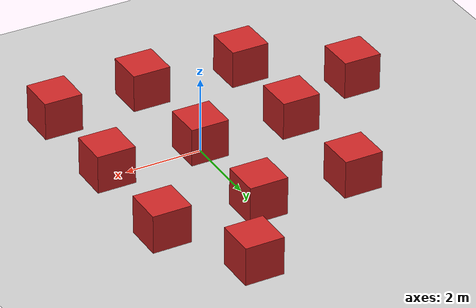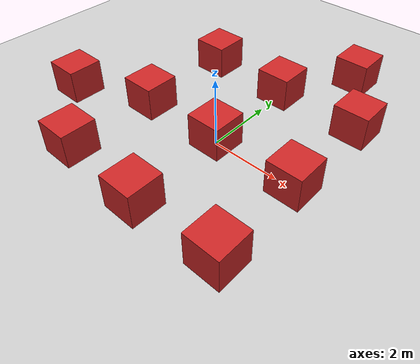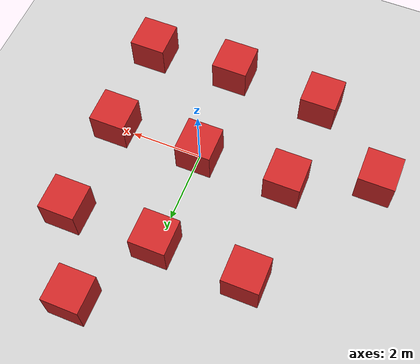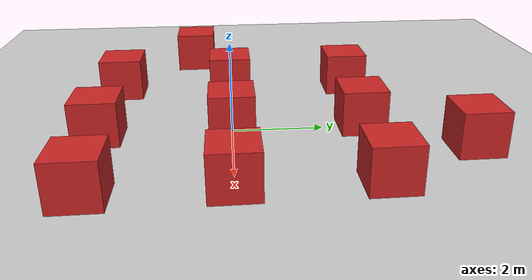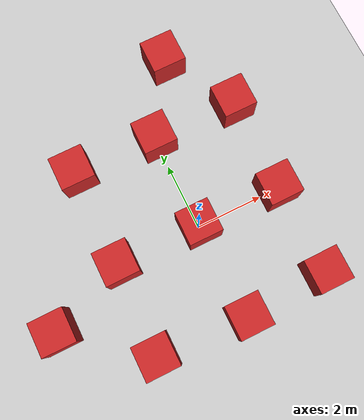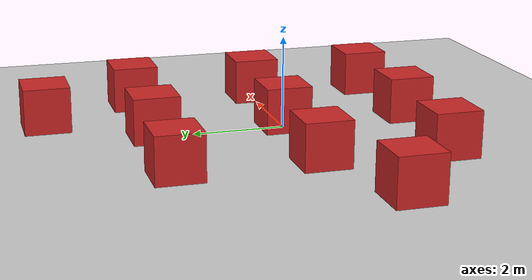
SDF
<sdf version="1.7">
 <world name="default">
  <light name="sun" type="directional">
   <pose>0 0 10 0 -0 0</pose>
   <diffuse>0.8 0.8 0.8 1</diffuse>
   <specular>0.2 0.2 0.2 1</specular>
   <attenuation>
    <range>1000</range>
    <constant>0.9</constant>
    <linear>0.01</linear>
    <quadratic>0.001</quadratic>
   </attenuation>
   <direction>-0.5 0.1 -0.9</direction>
   <spot><inner_angle>0</inner_angle><outer_angle>0</outer_angle><falloff>0</falloff></spot>
  </light>
  <model name="ground_plane">
   <static>1</static>
   <static>1</static>
   <static>1</static>
   <link name="link">
    <collision name="collision">
     <geometry><plane><normal>0 0 1</normal><size>100 100</size></plane></geometry>
     <surface><friction><ode><mu>100</mu><mu2>50</mu2></ode></friction></surface>
    </collision>
    <visual name="visual">
     <cast_shadows>0</cast_shadows>
     <geometry><plane><normal>0 0 1</normal><size>100 100</size></plane></geometry>
     <material>
      <script><uri>file://media/materials/scripts/gazebo.material</uri><name>Gazebo/Grey</name></script>
     </material>
    </visual>
   </link>
  </model>
  <gravity>0 0 -9.8</gravity>
  <magnetic_field>6e-06 2.3e-05 -4.2e-05</magnetic_field>
  <atmosphere type="adiabatic"/>
  <physics type="ode">
   <max_step_size>0.001</max_step_size>
   <real_time_factor>1</real_time_factor>
   <real_time_update_rate>1000</real_time_update_rate>
  </physics>
  <scene><ambient>0.4 0.4 0.4 1</ambient><background>0.7 0.7 0.7 1</background><shadows>1</shadows></scene>
  <audio><device>default</device></audio>
  <spherical_coordinates>
   <surface_model>EARTH_WGS84</surface_model>
   <latitude_deg>0</latitude_deg>
   <longitude_deg>0</longitude_deg>
   <elevation>0</elevation>
   <heading_deg>0</heading_deg>
  </spherical_coordinates>
  <model name="unit_box">
   <static>1</static>
   <static>1</static>
   <pose>0 0 0.5 0 -0 0</pose>
   <link name="link">
    <inertial>
     <mass>1</mass>
     <inertia>
      <ixx>0.166667</ixx>
      <ixy>0</ixy>
      <ixz>0</ixz>
      <iyy>0.166667</iyy>
      <iyz>0</iyz>
      <izz>0.166667</izz>
     </inertia>
    </inertial>
    <collision name="collision"><geometry><box><size>1 1 1</size></box></geometry></collision>
    <visual name="visual">
     <geometry><box><size>1 1 1</size></box></geometry>
     <material>
      <script><name>Gazebo/Red</name><uri>file://media/materials/scripts/gazebo.material</uri></script>
     </material>
    </visual>
   </link>
  </model>
  <model name="unit_box_0">
   <static>1</static>
   <static>1</static>
   <pose>2.5 0 0.5 0 -0 0</pose>
   <link name="link">
    <inertial>
     <mass>1</mass>
     <inertia>
      <ixx>0.166667</ixx>
      <ixy>0</ixy>
      <ixz>0</ixz>
      <iyy>0.166667</iyy>
      <iyz>0</iyz>
      <izz>0.166667</izz>
     </inertia>
    </inertial>
    <collision name="collision"><geometry><box><size>1 1 1</size></box></geometry></collision>
    <visual name="visual">
     <geometry><box><size>1 1 1</size></box></geometry>
     <material>
      <script><name>Gazebo/Red</name><uri>file://media/materials/scripts/gazebo.material</uri></script>
     </material>
    </visual>
   </link>
  </model>
  <model name="unit_box_1">
   <static>1</static>
   <static>1</static>
   <pose>-2.5 -5e-06 0.5 0 -0 0</pose>
   <link name="link">
    <inertial>
     <mass>1</mass>
     <inertia>
      <ixx>0.166667</ixx>
      <ixy>0</ixy>
      <ixz>0</ixz>
      <iyy>0.166667</iyy>
      <iyz>0</iyz>
      <izz>0.166667</izz>
     </inertia>
    </inertial>
    <collision name="collision"><geometry><box><size>1 1 1</size></box></geometry></collision>
    <visual name="visual">
     <geometry><box><size>1 1 1</size></box></geometry>
     <material>
      <script><name>Gazebo/Red</name><uri>file://media/materials/scripts/gazebo.material</uri></script>
     </material>
    </visual>
   </link>
  </model>
  <model name="unit_box_2">
   <static>1</static>
   <static>1</static>
   <pose>0.008814 2.86868 0.5 0 -0 0</pose>
   <link name="link">
    <inertial>
     <mass>1</mass>
     <inertia>
      <ixx>0.166667</ixx>
      <ixy>0</ixy>
      <ixz>0</ixz>
      <iyy>0.166667</iyy>
      <iyz>0</iyz>
      <izz>0.166667</izz>
     </inertia>
    </inertial>
    <collision name="collision"><geometry><box><size>1 1 1</size></box></geometry></collision>
    <visual name="visual">
     <geometry><box><size>1 1 1</size></box></geometry>
     <material>
      <script><name>Gazebo/Red</name><uri>file://media/materials/scripts/gazebo.material</uri></script>
     </material>
    </visual>
   </link>
  </model>
  <model name="unit_box_2_clone">
   <static>1</static>
   <static>1</static>
   <pose>0.078983 -2.84308 0.5 0 -0 0</pose>
   <link name="link">
    <inertial>
     <mass>1</mass>
     <inertia>
      <ixx>0.166667</ixx>
      <ixy>0</ixy>
      <ixz>0</ixz>
      <iyy>0.166667</iyy>
      <iyz>0</iyz>
      <izz>0.166667</izz>
     </inertia>
    </inertial>
    <collision name="collision"><geometry><box><size>1 1 1</size></box></geometry></collision>
    <visual name="visual">
     <geometry><box><size>1 1 1</size></box></geometry>
     <material>
      <script><name>Gazebo/Red</name><uri>file://media/materials/scripts/gazebo.material</uri></script>
     </material>
    </visual>
   </link>
  </model>
  <model name="unit_box_3">
   <static>1</static>
   <static>1</static>
   <pose>-2.58839 -2.69043 0.5 0 -0 0</pose>
   <link name="link">
    <inertial>
     <mass>1</mass>
     <inertia>
      <ixx>0.166667</ixx>
      <ixy>0</ixy>
      <ixz>0</ixz>
      <iyy>0.166667</iyy>
      <iyz>0</iyz>
      <izz>0.166667</izz>
     </inertia>
    </inertial>
    <collision name="collision"><geometry><box><size>1 1 1</size></box></geometry></collision>
    <visual name="visual">
     <geometry><box><size>1 1 1</size></box></geometry>
     <material>
      <script><name>Gazebo/Red</name><uri>file://media/materials/scripts/gazebo.material</uri></script>
     </material>
    </visual>
   </link>
  </model>
  <model name="unit_box_2_clone_0">
   <static>1</static>
   <static>1</static>
   <pose>2.54154 -2.71238 0.5 0 -0 0</pose>
   <link name="link">
    <inertial>
     <mass>1</mass>
     <inertia>
      <ixx>0.166667</ixx>
      <ixy>0</ixy>
      <ixz>0</ixz>
      <iyy>0.166667</iyy>
      <iyz>0</iyz>
      <izz>0.166667</izz>
     </inertia>
    </inertial>
    <collision name="collision"><geometry><box><size>1 1 1</size></box></geometry></collision>
    <visual name="visual">
     <geometry><box><size>1 1 1</size></box></geometry>
     <material>
      <script><name>Gazebo/Red</name><uri>file://media/materials/scripts/gazebo.material</uri></script>
     </material>
    </visual>
   </link>
  </model>
  <model name="unit_box_2_clone_1">
   <static>1</static>
   <static>1</static>
   <pose>2.52967 2.84595 0.5 0 -0 0</pose>
   <link name="link">
    <inertial>
     <mass>1</mass>
     <inertia>
      <ixx>0.166667</ixx>
      <ixy>0</ixy>
      <ixz>0</ixz>
      <iyy>0.166667</iyy>
      <iyz>0</iyz>
      <izz>0.166667</izz>
     </inertia>
    </inertial>
    <collision name="collision"><geometry><box><size>1 1 1</size></box></geometry></collision>
    <visual name="visual">
     <geometry><box><size>1 1 1</size></box></geometry>
     <material>
      <script><name>Gazebo/Red</name><uri>file://media/materials/scripts/gazebo.material</uri></script>
     </material>
    </visual>
   </link>
  </model>
  <model name="unit_box_2_clone_2">
   <static>1</static>
   <static>1</static>
   <pose>-2.49453 2.94399 0.5 0 -0 0</pose>
   <link name="link">
    <inertial>
     <mass>1</mass>
     <inertia>
      <ixx>0.166667</ixx>
      <ixy>0</ixy>
      <ixz>0</ixz>
      <iyy>0.166667</iyy>
      <iyz>0</iyz>
      <izz>0.166667</izz>
     </inertia>
    </inertial>
    <collision name="collision"><geometry><box><size>1 1 1</size></box></geometry></collision>
    <visual name="visual">
     <geometry><box><size>1 1 1</size></box></geometry>
     <material>
      <script><name>Gazebo/Red</name><uri>file://media/materials/scripts/gazebo.material</uri></script>
     </material>
    </visual>
   </link>
  </model>
  <model name="unit_box_2_clone_3">
   <static>1</static>
   <static>1</static>
   <pose>-4.76063 -0.931048 0.5 0 -0 0</pose>
   <link name="link">
    <inertial>
     <mass>1</mass>
     <inertia>
      <ixx>0.166667</ixx>
      <ixy>0</ixy>
      <ixz>0</ixz>
      <iyy>0.166667</iyy>
      <iyz>0</iyz>
      <izz>0.166667</izz>
     </inertia>
    </inertial>
    <collision name="collision"><geometry><box><size>1 1 1</size></box></geometry></collision>
    <visual name="visual">
     <geometry><box><size>1 1 1</size></box></geometry>
     <material>
      <script><name>Gazebo/Red</name><uri>file://media/materials/scripts/gazebo.material</uri></script>
     </material>
    </visual>
   </link>
  </model>
  <model name="unit_box_4">
   <static>1</static>
   <static>1</static>
   <pose>1.30171 4.98109 0.5 0 -0 0</pose>
   <link name="link">
    <inertial>
     <mass>1</mass>
     <inertia>
      <ixx>0.166667</ixx>
      <ixy>0</ixy>
      <ixz>0</ixz>
      <iyy>0.166667</iyy>
      <iyz>0</iyz>
      <izz>0.166667</izz>
     </inertia>
    </inertial>
    <collision name="collision"><geometry><box><size>1 1 1</size></box></geometry></collision>
    <visual name="visual">
     <geometry><box><size>1 1 1</size></box></geometry>
     <material>
      <script><name>Gazebo/Red</name><uri>file://media/materials/scripts/gazebo.material</uri></script>
     </material>
    </visual>
   </link>
  </model>
 </world>
</sdf>
